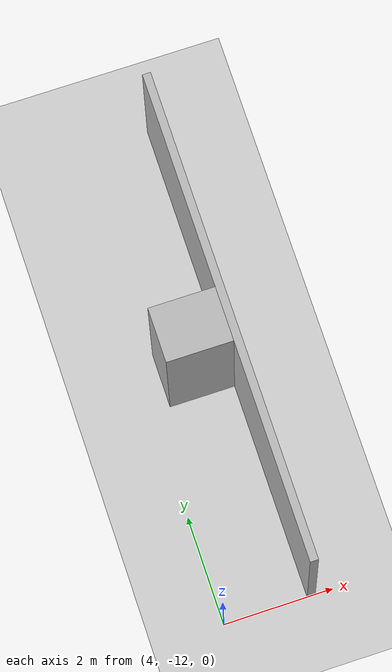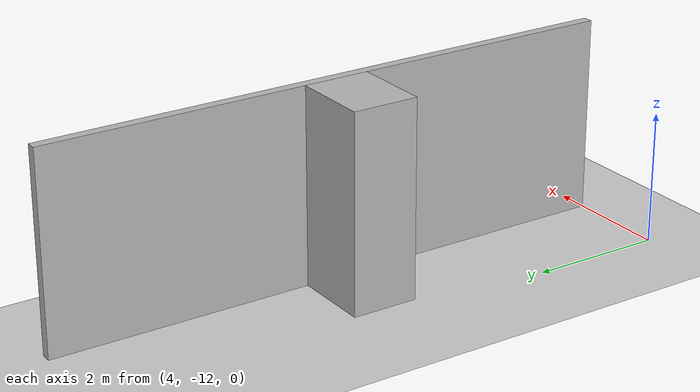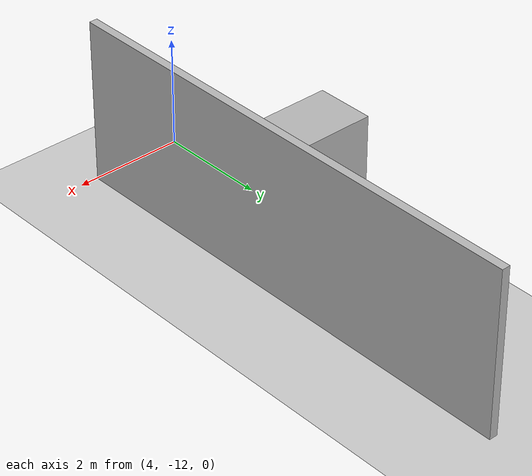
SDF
<?xml version="1.0" ?>
<sdf version="1.6"><world name="bump_box_1p2">
<include><uri>model://ground_plane</uri></include><include><uri>model://sun</uri></include>
<model name="walls"><static>true</static><link name="link">
<visual name="v_wall"><pose>5.6 -7.5 1.5 0 0 0</pose><geometry><box><size>0.15 9.0 3.0</size></box></geometry></visual>
<collision name="c_wall"><pose>5.6 -7.5 1.5 0 0 0</pose><geometry><box><size>0.15 9.0 3.0</size></box></geometry></collision>
<visual name="v_box"><pose>4.925000000000001 -7.5 1.5 0 0 0</pose><geometry><box><size>1.2 1.0 3.0</size></box></geometry></visual>
<collision name="c_box"><pose>4.925000000000001 -7.5 1.5 0 0 0</pose><geometry><box><size>1.2 1.0 3.0</size></box></geometry></collision>
</link></model></world></sdf>
